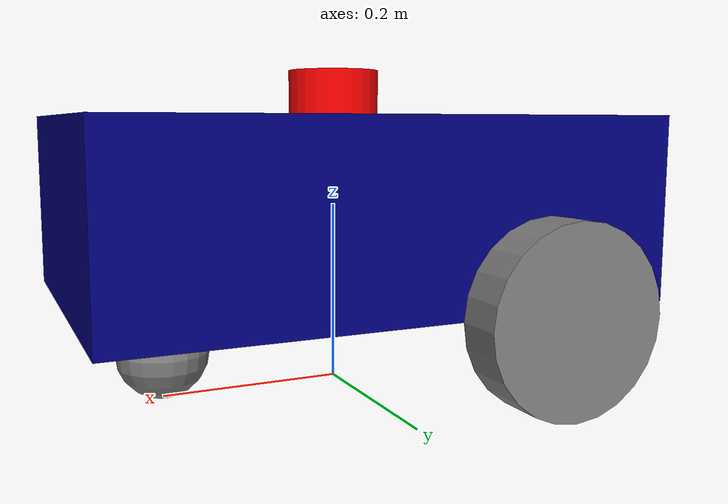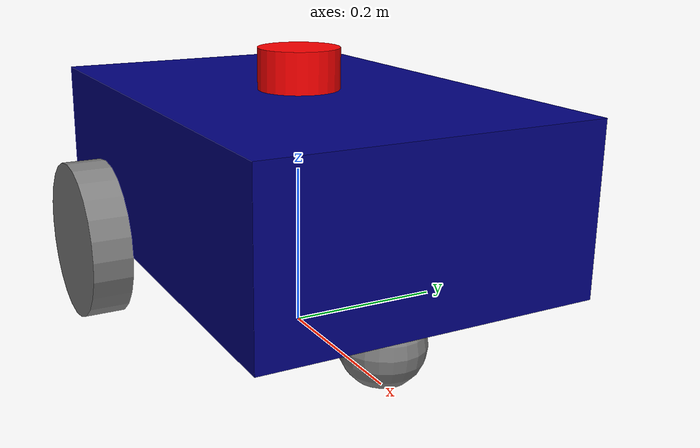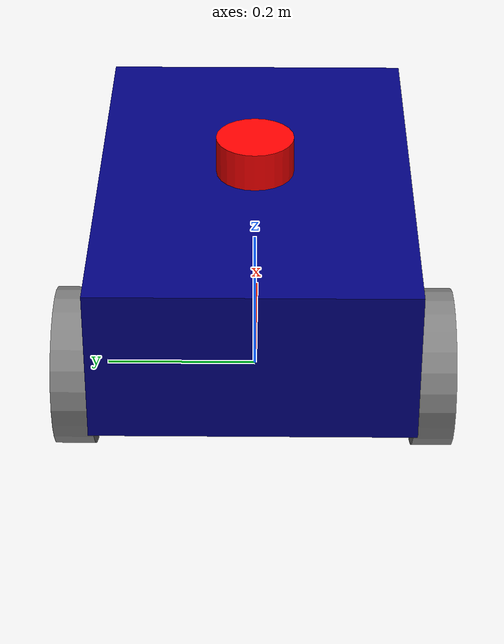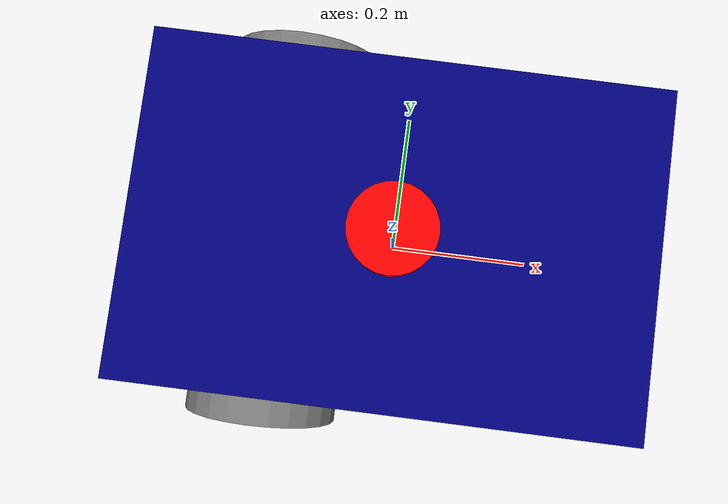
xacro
<?xml version="1.0"?>
<robot xmlns:xacro="http://www.ros.org/wiki/xacro"  name="robot">

    <xacro:arg name="use_ros2_control" default="true"/>

    <xacro:include filename="common_properties.xacro" />
    <xacro:include filename="robot_core.xacro" />
    <xacro:include filename="lidar.xacro" />

    <xacro:if value="$(arg use_ros2_control)">
        <xacro:include filename="ros2_control.xacro" />
    </xacro:if>
    <xacro:unless value="$(arg use_ros2_control)">
        <xacro:include filename="gazebo_control.xacro" />
    </xacro:unless>

</robot>

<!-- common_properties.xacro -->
<robot xmlns:xacro="http://www.ros.org/wiki/xacro">

    <material name="blue">
        <color rgba="0 0 0.5 1" />
    </material>

    <material name="grey">
        <color rgba="0.5 0.5 0.5 1" />
    </material>

    <material name="white">
        <color rgba="1 1 1 1" />
    </material>

    <material name="orange">
        <color rgba="1 0.3 0.1 1"/>
    </material>

    <material name="black">
        <color rgba="0 0 0 1"/>
    </material>

    <material name="red">
        <color rgba="1 0 0 1"/>
    </material>

    <!-- Specify some standard inertial calculations https://en.wikipedia.org/wiki/List_of_moments_of_inertia -->
    <!-- These make use of xacro's mathematical functionality -->

    <xacro:macro name="inertial_sphere" params="mass radius *origin">
        <inertial>
            <xacro:insert_block name="origin"/>
            <mass value="${mass}" />
            <inertia ixx="${(2/5) * mass * (radius*radius)}" ixy="0.0" ixz="0.0"
                    iyy="${(2/5) * mass * (radius*radius)}" iyz="0.0"
                    izz="${(2/5) * mass * (radius*radius)}" />
        </inertial>
    </xacro:macro>

    <xacro:macro name="inertial_box" params="mass x y z *origin">
        <inertial>
            <xacro:insert_block name="origin"/>
            <mass value="${mass}" />
            <inertia ixx="${(1/12) * mass * (y*y+z*z)}" ixy="0.0" ixz="0.0"
                    iyy="${(1/12) * mass * (x*x+z*z)}" iyz="0.0"
                    izz="${(1/12) * mass * (x*x+y*y)}" />
        </inertial>
    </xacro:macro>

    <xacro:macro name="inertial_cylinder" params="mass length radius *origin">
        <inertial>
            <xacro:insert_block name="origin"/>
            <mass value="${mass}" />
            <inertia ixx="${(1/12) * mass * (3*radius*radius + length*length)}" ixy="0.0" ixz="0.0"
                    iyy="${(1/12) * mass * (3*radius*radius + length*length)}" iyz="0.0"
                    izz="${(1/2) * mass * (radius*radius)}" />
        </inertial>
    </xacro:macro>

</robot>

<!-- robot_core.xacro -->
<robot xmlns:xacro="http://www.ros.org/wiki/xacro">

    <xacro:property name="base_length" value="0.6" />
    <xacro:property name="base_width" value="0.4" />
    <xacro:property name="base_height" value="0.2" />
    <xacro:property name="wheel_radius" value="0.1" />
    <xacro:property name="wheel_length" value="0.05" />

    <link name="base_footprint" />

    <link name="base_link">
        <visual>
            <geometry>
                <box size="${base_length} ${base_width} ${base_height}" />
            </geometry>
            <origin xyz="0 0 ${base_height / 2.0}" rpy="0 0 0" />
            <material name="blue" />
        </visual>
        <collision>
            <geometry>
                <box size="${base_length} ${base_width} ${base_height}" />
            </geometry>
            <origin xyz="0 0 ${base_height / 2.0}" rpy="0 0 0" />
        </collision>
        <xacro:box_inertia m="5.0" l="${2*base_length}" w="${2*base_width}" h="${2*base_height}"
                           xyz="0 0 ${base_height / 2.0}" rpy="0 0 0" />
    </link>

    <xacro:macro name="wheel_link" params="prefix">
        <link name="${prefix}_wheel_link">
            <visual>
                <geometry>
                    <cylinder radius="${wheel_radius}" length="${wheel_length}" />
                </geometry>
                <origin xyz="0 0 0" rpy="${pi / 2.0} 0 0" />
                <material name="grey" />
            </visual>
            <collision>
                <geometry>
                    <cylinder radius="${wheel_radius}" length="${wheel_length}" />
                </geometry>
                <origin xyz="0 0 0" rpy="${pi / 2.0} 0 0" />
            </collision>
            <xacro:cylinder_inertia m="1.0" r="${2*wheel_radius}" h="${2*wheel_length}"
                                    xyz="0 0 0" rpy="${pi / 2.0} 0 0" />
        </link>
    </xacro:macro>

    <xacro:wheel_link prefix="right" />
    <xacro:wheel_link prefix="left" />

    <link name="caster_wheel_link">
        <visual>
            <geometry>
                <sphere radius="${wheel_radius / 2.0}" />
            </geometry>
            <origin xyz="0 0 0" rpy="0 0 0" />
            <material name="grey" />
        </visual>
        <collision>
            <geometry>
                <sphere radius="${wheel_radius / 2.0}" />
            </geometry>
            <origin xyz="0 0 0" rpy="0 0 0" />
        </collision>
        <xacro:sphere_inertia m="0.5" r="${2*wheel_radius / 2.0}"
                              xyz="0 0 0" rpy="0 0 0" />
    </link>

    <joint name="base_joint" type="fixed">
        <parent link="base_footprint" />
        <child link="base_link" />
        <origin xyz="0 0 ${wheel_radius}" rpy="0 0 0"/>
    </joint>

    <joint name="base_right_wheel_joint" type="continuous">
        <parent link="base_link" />
        <child link="right_wheel_link" />
        <origin xyz="${-base_length / 4.0} ${-(base_width + wheel_length) / 2.0} 0" rpy="0 0 0" />
        <axis xyz="0 1 0" />
    </joint>

    <joint name="base_left_wheel_joint" type="continuous">
        <parent link="base_link" />
        <child link="left_wheel_link" />
        <origin xyz="${-base_length / 4.0} ${(base_width + wheel_length) / 2.0} 0" rpy="0 0 0" />
        <axis xyz="0 1 0" />
    </joint>

    <joint name="base_caster_wheel_joint" type="fixed">
        <parent link="base_link" />
        <child link="caster_wheel_link" />
        <origin xyz="${base_length / 3.0} 0 ${-wheel_radius / 2.0}" rpy="0 0 0" />
    </joint>

    <!-- Gazebo tags -->

    <gazebo reference="base_link">
        <material>Gazebo/Blue</material>
    </gazebo>

    <gazebo reference="right_wheel_link">
        <material>Gazebo/Grey</material>
    </gazebo>

    <gazebo reference="left_wheel_link">
        <material>Gazebo/Grey</material>
    </gazebo>

    <gazebo reference="caster_wheel_link">
        <material>Gazebo/Grey</material>
        <mu1 value="0.1" />
        <mu2 value="0.1" />
    </gazebo>

</robot>

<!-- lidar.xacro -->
<robot xmlns:xacro="http://www.ros.org/wiki/xacro" >

    <xacro:property name="lidar_radius" value="0.05" />
    <xacro:property name="lidar_height" value="0.05" />

    <joint name="base_laser_joint" type="fixed">
        <parent link="base_link"/>
        <child link="laser_frame"/>
        <origin xyz="0 0 ${base_height + lidar_height / 2.0}" rpy="0 0 0"/>
    </joint>

    <link name="laser_frame">
        <visual>
            <geometry>
                <cylinder radius="${lidar_radius}" length="${lidar_height}"/>
            </geometry>
            <origin xyz="0 0 0" rpy="0 0 0" />
            <material name="red"/>
        </visual>
        <collision>
            <geometry>
                 <cylinder radius="${lidar_radius}" length="${lidar_height}"/>
            </geometry>
        </collision>
        <xacro:cylinder_inertia m="0.1" r="0.04" h="0.05"
                                    xyz="0 0 0" rpy="0 0 0" />
    </link>

    <gazebo reference="laser_frame">
        <material>Gazebo/Red</material>

        <sensor name="laser" type="ray">
            <pose> 0 0 0 0 0 0 </pose>
            <visualize>true</visualize>
            <update_rate>5</update_rate>
            <ray>
                <scan>
                    <horizontal>
                        <samples>360</samples>
                        <min_angle>-3.14</min_angle>
                        <max_angle>3.14</max_angle>
                    </horizontal>
                </scan>
                <range>
                    <min>0.3</min>
                    <max>12</max>
                </range>
            </ray>
            <plugin name="laser_controller" filename="libgazebo_ros_ray_sensor.so">
                <ros>
                    <remapping>~/out:=scan</remapping>
                </ros>
                <output_type>sensor_msgs/LaserScan</output_type>
                <frame_name>laser_frame</frame_name>
                <visualize>true</visualize>
            </plugin>
        </sensor>
    </gazebo>

</robot>
